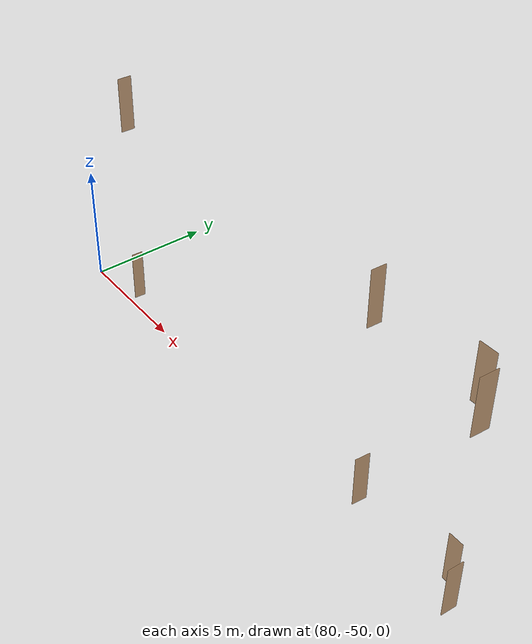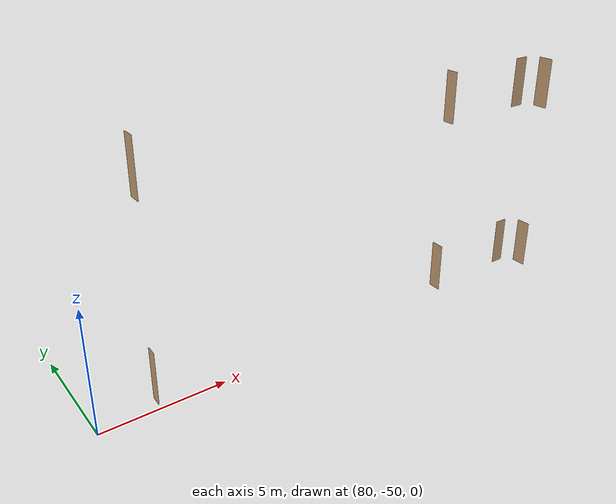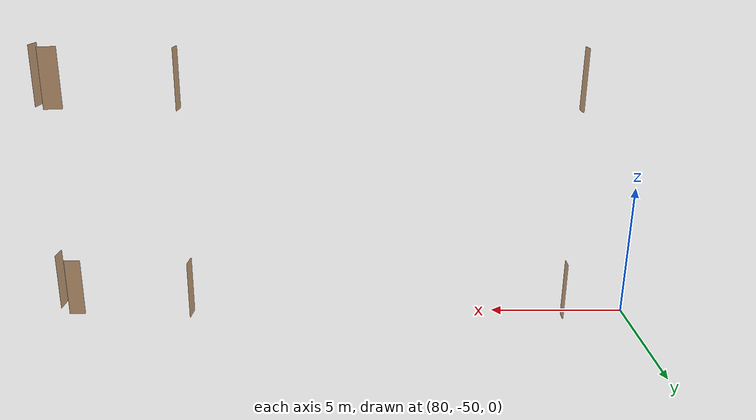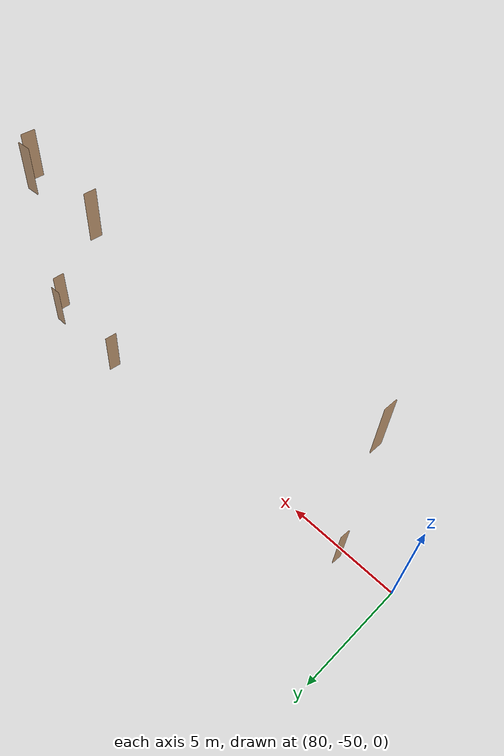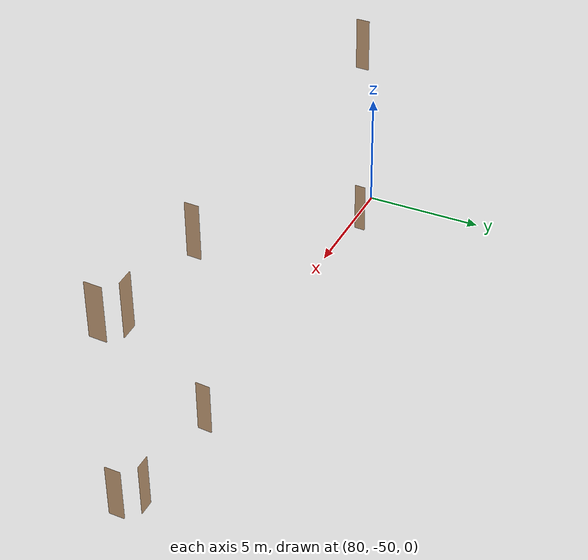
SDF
<sdf version="1.7">
 <world name="sim_world">
  <model name="bano013">
   <pose>82.40057625517343 -49.518308076902656 0.0 0 0 1.5131615643267342</pose>
   <link name="right">
    <pose>0 0 1.11 0 0 0</pose>
    <visual name="right_visual">
     <geometry><box><size>0.4661509275095324 0.03 2.2</size></box></geometry>
     <material>
      <ambient>0.5 0.25 0 0.6</ambient>
      <diffuse>0.5 0.25 0 0.6</diffuse>
      <pbr><metal><metalness>0.0</metalness></metal></pbr>
     </material>
    </visual>
    <collision name="right_collision">
     <geometry><box><size>0.4661509275095324 0.03 2.2</size></box></geometry>
     <surface><contact><collide_bitmask>0x02</collide_bitmask></contact></surface>
    </collision>
    <inertial>
     <mass>50.0</mass>
     <inertia><ixx>20.17041666666667</ixx><iyy>21.072069530074995</iyy><izz>0.9091528634083224</izz></inertia>
    </inertial>
   </link>
   <joint name="right_joint" type="revolute">
    <parent>world</parent>
    <child>right</child>
    <axis><xyz>0 0 -1</xyz><limit><lower>0</lower><upper>1.57</upper></limit></axis>
    <pose>0.2380754637547662 0 0 0 0 0</pose>
   </joint>
   <plugin name="register_component" filename="libregister_component.so">
    <component name="Door">
     <v_max_door>0.5</v_max_door>
     <a_max_door>0.3</a_max_door>
     <a_nom_door>0.15</a_nom_door>
     <dx_min_door>0.01</dx_min_door>
     <f_max_door>500.0</f_max_door>
     <ros_interface>true</ros_interface>
     <door name="bano013" type="SwingDoor" left_joint_name="empty_joint" right_joint_name="right_joint"/>
    </component>
   </plugin>
  </model>
  <model name="bano019">
   <pose>96.59748511829628 -49.48174535185072 0.0 0 0 1.495199436193495</pose>
   <link name="right">
    <pose>0 0 1.11 0 0 0</pose>
    <visual name="right_visual">
     <geometry><box><size>0.5950692042728132 0.03 2.2</size></box></geometry>
     <material>
      <ambient>0.5 0.25 0 0.6</ambient>
      <diffuse>0.5 0.25 0 0.6</diffuse>
      <pbr><metal><metalness>0.0</metalness></metal></pbr>
     </material>
    </visual>
    <collision name="right_collision">
     <geometry><box><size>0.5950692042728132 0.03 2.2</size></box></geometry>
     <surface><contact><collide_bitmask>0x02</collide_bitmask></contact></surface>
    </collision>
    <inertial>
     <mass>50.0</mass>
     <inertia><ixx>20.17041666666667</ixx><iyy>21.642113991141166</iyy><izz>1.479197324474496</izz></inertia>
    </inertial>
   </link>
   <joint name="right_joint" type="revolute">
    <parent>world</parent>
    <child>right</child>
    <axis><xyz>0 0 1</xyz><limit><lower>0</lower><upper>1.57</upper></limit></axis>
    <pose>0.3025346021364066 0 0 0 0 0</pose>
   </joint>
   <plugin name="register_component" filename="libregister_component.so">
    <component name="Door">
     <v_max_door>0.5</v_max_door>
     <a_max_door>0.3</a_max_door>
     <a_nom_door>0.15</a_nom_door>
     <dx_min_door>0.01</dx_min_door>
     <f_max_door>500.0</f_max_door>
     <ros_interface>true</ros_interface>
     <door name="bano019" type="SwingDoor" left_joint_name="empty_joint" right_joint_name="right_joint"/>
    </component>
   </plugin>
  </model>
  <model name="TD2012CI">
   <pose>101.0331451901359 -49.4272154927263 0.0 0 0 0.0</pose>
   <link name="right">
    <pose>0 0 1.11 0 0 0</pose>
    <visual name="right_visual">
     <geometry><box><size>0.6053715363713843 0.03 2.2</size></box></geometry>
     <material>
      <ambient>0.5 0.25 0 0.6</ambient>
      <diffuse>0.5 0.25 0 0.6</diffuse>
      <pbr><metal><metalness>0.0</metalness></metal></pbr>
     </material>
    </visual>
    <collision name="right_collision">
     <geometry><box><size>0.6053715363713843 0.03 2.2</size></box></geometry>
     <surface><contact><collide_bitmask>0x02</collide_bitmask></contact></surface>
    </collision>
    <inertial>
     <mass>50.0</mass>
     <inertia><ixx>20.17041666666667</ixx><iyy>21.693644571036046</iyy><izz>1.5307279043693762</izz></inertia>
    </inertial>
   </link>
   <joint name="right_joint" type="revolute">
    <parent>world</parent>
    <child>right</child>
    <axis><xyz>0 0 -1</xyz><limit><lower>0</lower><upper>1.57</upper></limit></axis>
    <pose>0.30768576818569215 0 0 0 0 0</pose>
   </joint>
   <plugin name="register_component" filename="libregister_component.so">
    <component name="Door">
     <v_max_door>0.5</v_max_door>
     <a_max_door>0.3</a_max_door>
     <a_nom_door>0.15</a_nom_door>
     <dx_min_door>0.01</dx_min_door>
     <f_max_door>500.0</f_max_door>
     <ros_interface>true</ros_interface>
     <door name="TD2012CI" type="SwingDoor" left_joint_name="empty_joint" right_joint_name="right_joint"/>
    </component>
   </plugin>
  </model>
  <model name="TD2013CA">
   <pose>101.79936882906964 -50.17409163688117 0.0 0 0 1.5413766250854544</pose>
   <link name="right">
    <pose>0 0 1.11 0 0 0</pose>
    <visual name="right_visual">
     <geometry><box><size>0.6332346513899125 0.03 2.2</size></box></geometry>
     <material>
      <ambient>0.5 0.25 0 0.6</ambient>
      <diffuse>0.5 0.25 0 0.6</diffuse>
      <pbr><metal><metalness>0.0</metalness></metal></pbr>
     </material>
    </visual>
    <collision name="right_collision">
     <geometry><box><size>0.6332346513899125 0.03 2.2</size></box></geometry>
     <surface><contact><collide_bitmask>0x02</collide_bitmask></contact></surface>
    </collision>
    <inertial>
     <mass>50.0</mass>
     <inertia><ixx>20.17041666666667</ixx><iyy>21.837442182170438</iyy><izz>1.674525515503767</izz></inertia>
    </inertial>
   </link>
   <joint name="right_joint" type="revolute">
    <parent>world</parent>
    <child>right</child>
    <axis><xyz>0 0 -1</xyz><limit><lower>0</lower><upper>1.57</upper></limit></axis>
    <pose>0.32161732569495627 0 0 0 0 0</pose>
   </joint>
   <plugin name="register_component" filename="libregister_component.so">
    <component name="Door">
     <v_max_door>0.5</v_max_door>
     <a_max_door>0.3</a_max_door>
     <a_nom_door>0.15</a_nom_door>
     <dx_min_door>0.01</dx_min_door>
     <f_max_door>500.0</f_max_door>
     <ros_interface>true</ros_interface>
     <door name="TD2013CA" type="SwingDoor" left_joint_name="empty_joint" right_joint_name="right_joint"/>
    </component>
   </plugin>
  </model>
  <model name="bano13">
   <pose>82.4238737200315 -49.49501255397513 8.0 0 0 1.554816171932805</pose>
   <link name="right">
    <pose>0 0 1.11 0 0 0</pose>
    <visual name="right_visual">
     <geometry><box><size>0.5400908523598633 0.03 2.2</size></box></geometry>
     <material>
      <ambient>0.5 0.25 0 0.6</ambient>
      <diffuse>0.5 0.25 0 0.6</diffuse>
      <pbr><metal><metalness>0.0</metalness></metal></pbr>
     </material>
    </visual>
    <collision name="right_collision">
     <geometry><box><size>0.5400908523598633 0.03 2.2</size></box></geometry>
     <surface><contact><collide_bitmask>0x02</collide_bitmask></contact></surface>
    </collision>
    <inertial>
     <mass>50.0</mass>
     <inertia><ixx>20.17041666666667</ixx><iyy>21.38207553667835</iyy><izz>1.219158870011682</izz></inertia>
    </inertial>
   </link>
   <joint name="right_joint" type="revolute">
    <parent>world</parent>
    <child>right</child>
    <axis><xyz>0 0 -1</xyz><limit><lower>0</lower><upper>1.57</upper></limit></axis>
    <pose>0.27504542617993166 0 0 0 0 0</pose>
   </joint>
   <plugin name="register_component" filename="libregister_component.so">
    <component name="Door">
     <v_max_door>0.5</v_max_door>
     <a_max_door>0.3</a_max_door>
     <a_nom_door>0.15</a_nom_door>
     <dx_min_door>0.01</dx_min_door>
     <f_max_door>500.0</f_max_door>
     <ros_interface>true</ros_interface>
     <door name="bano13" type="SwingDoor" left_joint_name="empty_joint" right_joint_name="right_joint"/>
    </component>
   </plugin>
  </model>
  <model name="bano19">
   <pose>96.61283543717667 -49.501921607688836 8.0 0 0 1.5239625312499971</pose>
   <link name="right">
    <pose>0 0 1.11 0 0 0</pose>
    <visual name="right_visual">
     <geometry><box><size>0.5516831153719108 0.03 2.2</size></box></geometry>
     <material>
      <ambient>0.5 0.25 0 0.6</ambient>
      <diffuse>0.5 0.25 0 0.6</diffuse>
      <pbr><metal><metalness>0.0</metalness></metal></pbr>
     </material>
    </visual>
    <collision name="right_collision">
     <geometry><box><size>0.5516831153719108 0.03 2.2</size></box></geometry>
     <surface><contact><collide_bitmask>0x02</collide_bitmask></contact></surface>
    </collision>
    <inertial>
     <mass>50.0</mass>
     <inertia><ixx>20.17041666666667</ixx><iyy>21.43480941577691</iyy><izz>1.271892749110238</izz></inertia>
    </inertial>
   </link>
   <joint name="right_joint" type="revolute">
    <parent>world</parent>
    <child>right</child>
    <axis><xyz>0 0 1</xyz><limit><lower>0</lower><upper>1.57</upper></limit></axis>
    <pose>0.2808415576859554 0 0 0 0 0</pose>
   </joint>
   <plugin name="register_component" filename="libregister_component.so">
    <component name="Door">
     <v_max_door>0.5</v_max_door>
     <a_max_door>0.3</a_max_door>
     <a_nom_door>0.15</a_nom_door>
     <dx_min_door>0.01</dx_min_door>
     <f_max_door>500.0</f_max_door>
     <ros_interface>true</ros_interface>
     <door name="bano19" type="SwingDoor" left_joint_name="empty_joint" right_joint_name="right_joint"/>
    </component>
   </plugin>
  </model>
  <model name="TD2114CI">
   <pose>101.0554368297633 -49.45873664672891 8.0 0 0 0.030194498058427718</pose>
   <link name="right">
    <pose>0 0 1.11 0 0 0</pose>
    <visual name="right_visual">
     <geometry><box><size>0.6788441421442872 0.03 2.2</size></box></geometry>
     <material>
      <ambient>0.5 0.25 0 0.6</ambient>
      <diffuse>0.5 0.25 0 0.6</diffuse>
      <pbr><metal><metalness>0.0</metalness></metal></pbr>
     </material>
    </visual>
    <collision name="right_collision">
     <geometry><box><size>0.6788441421442872 0.03 2.2</size></box></geometry>
     <surface><contact><collide_bitmask>0x02</collide_bitmask></contact></surface>
    </collision>
    <inertial>
     <mass>50.0</mass>
     <inertia><ixx>20.17041666666667</ixx><iyy>22.08678903884839</iyy><izz>1.923872372181722</izz></inertia>
    </inertial>
   </link>
   <joint name="right_joint" type="revolute">
    <parent>world</parent>
    <child>right</child>
    <axis><xyz>0 0 -1</xyz><limit><lower>0</lower><upper>1.57</upper></limit></axis>
    <pose>0.3444220710721436 0 0 0 0 0</pose>
   </joint>
   <plugin name="register_component" filename="libregister_component.so">
    <component name="Door">
     <v_max_door>0.5</v_max_door>
     <a_max_door>0.3</a_max_door>
     <a_nom_door>0.15</a_nom_door>
     <dx_min_door>0.01</dx_min_door>
     <f_max_door>500.0</f_max_door>
     <ros_interface>true</ros_interface>
     <door name="TD2114CI" type="SwingDoor" left_joint_name="empty_joint" right_joint_name="right_joint"/>
    </component>
   </plugin>
  </model>
  <model name="TD2115CI">
   <pose>101.80830739307545 -50.182712767429024 8.0 0 0 1.5175328438997668</pose>
   <link name="right">
    <pose>0 0 1.11 0 0 0</pose>
    <visual name="right_visual">
     <geometry><box><size>0.6749327513180156 0.03 2.2</size></box></geometry>
     <material>
      <ambient>0.5 0.25 0 0.6</ambient>
      <diffuse>0.5 0.25 0 0.6</diffuse>
      <pbr><metal><metalness>0.0</metalness></metal></pbr>
     </material>
    </visual>
    <collision name="right_collision">
     <geometry><box><size>0.6749327513180156 0.03 2.2</size></box></geometry>
     <surface><contact><collide_bitmask>0x02</collide_bitmask></contact></surface>
    </collision>
    <inertial>
     <mass>50.0</mass>
     <inertia><ixx>20.17041666666667</ixx><iyy>22.064725911673783</iyy><izz>1.9018092450071096</izz></inertia>
    </inertial>
   </link>
   <joint name="right_joint" type="revolute">
    <parent>world</parent>
    <child>right</child>
    <axis><xyz>0 0 -1</xyz><limit><lower>0</lower><upper>1.57</upper></limit></axis>
    <pose>0.3424663756590078 0 0 0 0 0</pose>
   </joint>
   <plugin name="register_component" filename="libregister_component.so">
    <component name="Door">
     <v_max_door>0.5</v_max_door>
     <a_max_door>0.3</a_max_door>
     <a_nom_door>0.15</a_nom_door>
     <dx_min_door>0.01</dx_min_door>
     <f_max_door>500.0</f_max_door>
     <ros_interface>true</ros_interface>
     <door name="TD2115CI" type="SwingDoor" left_joint_name="empty_joint" right_joint_name="right_joint"/>
    </component>
   </plugin>
  </model>
 </world>
</sdf>
